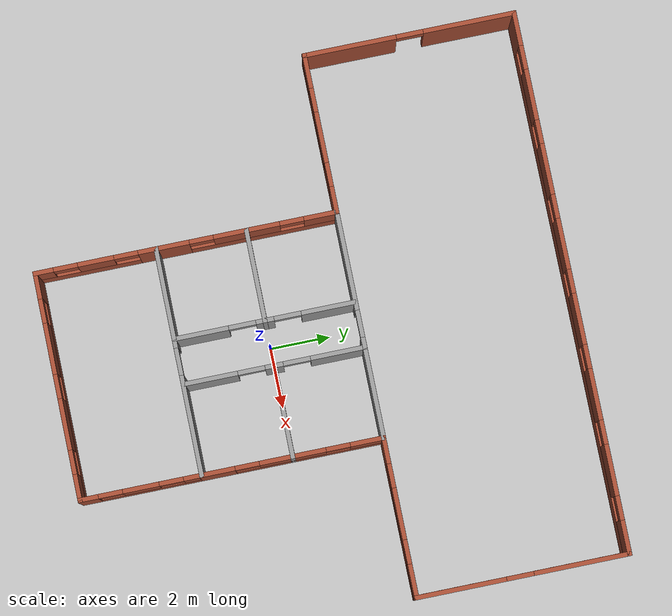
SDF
<?xml version='1.0'?>
<sdf version='1.6'>
  <model name='Building'>
    <pose frame=''>0 1.5 0 0 -0 0</pose>
    <link name='Wall_0'>
      <pose frame=''>0.75 -1.5 0 0 -0 1.5708</pose>
      <visual name='Wall_0_Visual_0'>
        <pose frame=''>-2.1375 0 1.25 0 -0 0</pose>
        <geometry>
          <box>
            <size>1.875 0.15 2.5</size>
          </box>
        </geometry>
        <material>
          <script>
            <uri>file://media/materials/scripts/gazebo.material</uri>
            <name>Gazebo/Grey</name>
          </script>
          <ambient>1 1 1 1</ambient>
        </material>
        <meta>
          <layer>0</layer>
        </meta>
      </visual>
      <collision name='Wall_0_Collision_0'>
        <geometry>
          <box>
            <size>1.875 0.15 2.5</size>
          </box>
        </geometry>
        <pose frame=''>-2.1375 0 1.25 0 -0 0</pose>
      </collision>
      <visual name='Wall_0_Visual_1'>
        <pose frame=''>0 0 1.25 0 -0 0</pose>
        <geometry>
          <box>
            <size>0.6 0.15 2.5</size>
          </box>
        </geometry>
        <material>
          <script>
            <uri>file://media/materials/scripts/gazebo.material</uri>
            <name>Gazebo/Grey</name>
          </script>
          <ambient>1 1 1 1</ambient>
        </material>
        <meta>
          <layer>0</layer>
        </meta>
      </visual>
      <collision name='Wall_0_Collision_1'>
        <geometry>
          <box>
            <size>0.6 0.15 2.5</size>
          </box>
        </geometry>
        <pose frame=''>0 0 1.25 0 -0 0</pose>
      </collision>
      <visual name='Wall_0_Visual_2'>
        <pose frame=''>2.1375 0 1.25 0 -0 0</pose>
        <geometry>
          <box>
            <size>1.875 0.15 2.5</size>
          </box>
        </geometry>
        <material>
          <script>
            <uri>file://media/materials/scripts/gazebo.material</uri>
            <name>Gazebo/Grey</name>
          </script>
          <ambient>1 1 1 1</ambient>
        </material>
        <meta>
          <layer>0</layer>
        </meta>
      </visual>
      <collision name='Wall_0_Collision_2'>
        <geometry>
          <box>
            <size>1.875 0.15 2.5</size>
          </box>
        </geometry>
        <pose frame=''>2.1375 0 1.25 0 -0 0</pose>
      </collision>
      <visual name='Wall_0_Visual_3'>
        <pose frame=''>-0.75 0 2.25 0 -0 0</pose>
        <geometry>
          <box>
            <size>0.9 0.15 0.5</size>
          </box>
        </geometry>
        <material>
          <script>
            <uri>file://media/materials/scripts/gazebo.material</uri>
            <name>Gazebo/Grey</name>
          </script>
          <ambient>1 1 1 1</ambient>
        </material>
        <meta>
          <layer>0</layer>
        </meta>
      </visual>
      <collision name='Wall_0_Collision_3'>
        <geometry>
          <box>
            <size>0.9 0.15 0.5</size>
          </box>
        </geometry>
        <pose frame=''>-0.75 0 2.25 0 -0 0</pose>
      </collision>
      <visual name='Wall_0_Visual_4'>
        <pose frame=''>0.75 0 2.25 0 -0 0</pose>
        <geometry>
          <box>
            <size>0.9 0.15 0.5</size>
          </box>
        </geometry>
        <material>
          <script>
            <uri>file://media/materials/scripts/gazebo.material</uri>
            <name>Gazebo/Grey</name>
          </script>
          <ambient>1 1 1 1</ambient>
        </material>
        <meta>
          <layer>0</layer>
        </meta>
      </visual>
      <collision name='Wall_0_Collision_4'>
        <geometry>
          <box>
            <size>0.9 0.15 0.5</size>
          </box>
        </geometry>
        <pose frame=''>0.75 0 2.25 0 -0 0</pose>
      </collision>
    </link>
    <link name='Wall_11'>
      <pose frame=''>-3.75 -1.5 0 0 -0 1.5708</pose>
      <visual name='Wall_11_Visual_0'>
        <pose frame=''>-2.4875 0 1.25 0 -0 0</pose>
        <geometry>
          <box>
            <size>1.175 0.15 2.5</size>
          </box>
        </geometry>
        <material>
          <script>
            <uri>file://media/materials/scripts/gazebo.material</uri>
            <name>Gazebo/Bricks</name>
          </script>
          <ambient>1 1 1 1</ambient>
        </material>
        <meta>
          <layer>0</layer>
        </meta>
      </visual>
      <collision name='Wall_11_Collision_0'>
        <geometry>
          <box>
            <size>1.175 0.15 2.5</size>
          </box>
        </geometry>
        <pose frame=''>-2.4875 0 1.25 0 -0 0</pose>
      </collision>
      <visual name='Wall_11_Visual_1'>
        <pose frame=''>0.5875 0 0.5 0 -0 0</pose>
        <geometry>
          <box>
            <size>4.975 0.15 1</size>
          </box>
        </geometry>
        <material>
          <script>
            <uri>file://media/materials/scripts/gazebo.material</uri>
            <name>Gazebo/Bricks</name>
          </script>
          <ambient>1 1 1 1</ambient>
        </material>
        <meta>
          <layer>0</layer>
        </meta>
      </visual>
      <collision name='Wall_11_Collision_1'>
        <geometry>
          <box>
            <size>4.975 0.15 1</size>
          </box>
        </geometry>
        <pose frame=''>0.5875 0 0.5 0 -0 0</pose>
      </collision>
      <visual name='Wall_11_Visual_2'>
        <pose frame=''>-0 0 1.75 0 -0 0</pose>
        <geometry>
          <box>
            <size>2.2 0.15 1.5</size>
          </box>
        </geometry>
        <material>
          <script>
            <uri>file://media/materials/scripts/gazebo.material</uri>
            <name>Gazebo/Bricks</name>
          </script>
          <ambient>1 1 1 1</ambient>
        </material>
        <meta>
          <layer>0</layer>
        </meta>
      </visual>
      <collision name='Wall_11_Collision_2'>
        <geometry>
          <box>
            <size>2.2 0.15 1.5</size>
          </box>
        </geometry>
        <pose frame=''>-0 0 1.75 0 -0 0</pose>
      </collision>
      <visual name='Wall_11_Visual_3'>
        <pose frame=''>2.4875 0 1.75 0 -0 0</pose>
        <geometry>
          <box>
            <size>1.175 0.15 1.5</size>
          </box>
        </geometry>
        <material>
          <script>
            <uri>file://media/materials/scripts/gazebo.material</uri>
            <name>Gazebo/Bricks</name>
          </script>
          <ambient>1 1 1 1</ambient>
        </material>
        <meta>
          <layer>0</layer>
        </meta>
      </visual>
      <collision name='Wall_11_Collision_3'>
        <geometry>
          <box>
            <size>1.175 0.15 1.5</size>
          </box>
        </geometry>
        <pose frame=''>2.4875 0 1.75 0 -0 0</pose>
      </collision>
      <visual name='Wall_11_Visual_4'>
        <pose frame=''>-1.5 0 2.15 0 -0 0</pose>
        <geometry>
          <box>
            <size>0.8 0.15 0.7</size>
          </box>
        </geometry>
        <material>
          <script>
            <uri>file://media/materials/scripts/gazebo.material</uri>
            <name>Gazebo/Bricks</name>
          </script>
          <ambient>1 1 1 1</ambient>
        </material>
        <meta>
          <layer>0</layer>
        </meta>
      </visual>
      <collision name='Wall_11_Collision_4'>
        <geometry>
          <box>
            <size>0.8 0.15 0.7</size>
          </box>
        </geometry>
        <pose frame=''>-1.5 0 2.15 0 -0 0</pose>
      </collision>
      <visual name='Wall_11_Visual_5'>
        <pose frame=''>1.5 0 2.15 0 -0 0</pose>
        <geometry>
          <box>
            <size>0.8 0.15 0.7</size>
          </box>
        </geometry>
        <material>
          <script>
            <uri>file://media/materials/scripts/gazebo.material</uri>
            <name>Gazebo/Bricks</name>
          </script>
          <ambient>1 1 1 1</ambient>
        </material>
        <meta>
          <layer>0</layer>
        </meta>
      </visual>
      <collision name='Wall_11_Collision_5'>
        <geometry>
          <box>
            <size>0.8 0.15 0.7</size>
          </box>
        </geometry>
        <pose frame=''>1.5 0 2.15 0 -0 0</pose>
      </collision>
    </link>
    <link name='Wall_13'>
      <pose frame=''>0 1.5 0 0 -0 0</pose>
      <visual name='Wall_13_Visual_0'>
        <pose frame=''>-2.15062 0 1.25 0 -0 0</pose>
        <geometry>
          <box>
            <size>3.34875 0.15 2.5</size>
          </box>
        </geometry>
        <material>
          <script>
            <uri>file://media/materials/scripts/gazebo.material</uri>
            <name>Gazebo/Grey</name>
          </script>
          <ambient>1 1 1 1</ambient>
        </material>
        <meta>
          <layer>0</layer>
        </meta>
      </visual>
      <collision name='Wall_13_Collision_0'>
        <geometry>
          <box>
            <size>3.34875 0.15 2.5</size>
          </box>
        </geometry>
        <pose frame=''>-2.15062 0 1.25 0 -0 0</pose>
      </collision>
      <visual name='Wall_13_Visual_1'>
        <pose frame=''>2.12438 0 1.25 0 -0 0</pose>
        <geometry>
          <box>
            <size>3.40125 0.15 2.5</size>
          </box>
        </geometry>
        <material>
          <script>
            <uri>file://media/materials/scripts/gazebo.material</uri>
            <name>Gazebo/Grey</name>
          </script>
          <ambient>1 1 1 1</ambient>
        </material>
        <meta>
          <layer>0</layer>
        </meta>
      </visual>
      <collision name='Wall_13_Collision_1'>
        <geometry>
          <box>
            <size>3.40125 0.15 2.5</size>
          </box>
        </geometry>
        <pose frame=''>2.12438 0 1.25 0 -0 0</pose>
      </collision>
      <visual name='Wall_13_Visual_2'>
        <pose frame=''>-0.026247 0 2.25 0 -0 0</pose>
        <geometry>
          <box>
            <size>0.9 0.15 0.5</size>
          </box>
        </geometry>
        <material>
          <script>
            <uri>file://media/materials/scripts/gazebo.material</uri>
            <name>Gazebo/Grey</name>
          </script>
          <ambient>1 1 1 1</ambient>
        </material>
        <meta>
          <layer>0</layer>
        </meta>
      </visual>
      <collision name='Wall_13_Collision_2'>
        <geometry>
          <box>
            <size>0.9 0.15 0.5</size>
          </box>
        </geometry>
        <pose frame=''>-0.026247 0 2.25 0 -0 0</pose>
      </collision>
    </link>
    <link name='Wall_15'>
      <pose frame=''>0 -4.5 0 0 -0 0</pose>
      <visual name='Wall_15_Visual_0'>
        <pose frame=''>-2.1375 0 1.25 0 -0 0</pose>
        <geometry>
          <box>
            <size>3.375 0.15 2.5</size>
          </box>
        </geometry>
        <material>
          <script>
            <uri>file://media/materials/scripts/gazebo.material</uri>
            <name>Gazebo/Grey</name>
          </script>
          <ambient>1 1 1 1</ambient>
        </material>
        <meta>
          <layer>0</layer>
        </meta>
      </visual>
      <collision name='Wall_15_Collision_0'>
        <geometry>
          <box>
            <size>3.375 0.15 2.5</size>
          </box>
        </geometry>
        <pose frame=''>-2.1375 0 1.25 0 -0 0</pose>
      </collision>
      <visual name='Wall_15_Visual_1'>
        <pose frame=''>2.1375 0 1.25 0 -0 0</pose>
        <geometry>
          <box>
            <size>3.375 0.15 2.5</size>
          </box>
        </geometry>
        <material>
          <script>
            <uri>file://media/materials/scripts/gazebo.material</uri>
            <name>Gazebo/Grey</name>
          </script>
          <ambient>1 1 1 1</ambient>
        </material>
        <meta>
          <layer>0</layer>
        </meta>
      </visual>
      <collision name='Wall_15_Collision_1'>
        <geometry>
          <box>
            <size>3.375 0.15 2.5</size>
          </box>
        </geometry>
        <pose frame=''>2.1375 0 1.25 0 -0 0</pose>
      </collision>
      <visual name='Wall_15_Visual_2'>
        <pose frame=''>0 0 2.25 0 -0 0</pose>
        <geometry>
          <box>
            <size>0.9 0.15 0.5</size>
          </box>
        </geometry>
        <material>
          <script>
            <uri>file://media/materials/scripts/gazebo.material</uri>
            <name>Gazebo/Grey</name>
          </script>
          <ambient>1 1 1 1</ambient>
        </material>
        <meta>
          <layer>0</layer>
        </meta>
      </visual>
      <collision name='Wall_15_Collision_2'>
        <geometry>
          <box>
            <size>0.9 0.15 0.5</size>
          </box>
        </geometry>
        <pose frame=''>0 0 2.25 0 -0 0</pose>
      </collision>
    </link>
    <link name='Wall_18'>
      <pose frame=''>-3.75 -6.5 0 0 0 -1.5708</pose>
      <visual name='Wall_18_Visual_0'>
        <pose frame=''>-1.73831 0 1.25 0 -0 0</pose>
        <geometry>
          <box>
            <size>0.673373 0.15 2.5</size>
          </box>
        </geometry>
        <material>
          <script>
            <uri>file://media/materials/scripts/gazebo.material</uri>
            <name>Gazebo/Bricks</name>
          </script>
          <ambient>1 1 1 1</ambient>
        </material>
        <meta>
          <layer>0</layer>
        </meta>
      </visual>
      <collision name='Wall_18_Collision_0'>
        <geometry>
          <box>
            <size>0.673373 0.15 2.5</size>
          </box>
        </geometry>
        <pose frame=''>-1.73831 0 1.25 0 -0 0</pose>
      </collision>
      <visual name='Wall_18_Visual_1'>
        <pose frame=''>0.336687 0 0.5 0 -0 0</pose>
        <geometry>
          <box>
            <size>3.47663 0.15 1</size>
          </box>
        </geometry>
        <material>
          <script>
            <uri>file://media/materials/scripts/gazebo.material</uri>
            <name>Gazebo/Bricks</name>
          </script>
          <ambient>1 1 1 1</ambient>
        </material>
        <meta>
          <layer>0</layer>
        </meta>
      </visual>
      <collision name='Wall_18_Collision_1'>
        <geometry>
          <box>
            <size>3.47663 0.15 1</size>
          </box>
        </geometry>
        <pose frame=''>0.336687 0 0.5 0 -0 0</pose>
      </collision>
      <visual name='Wall_18_Visual_2'>
        <pose frame=''>-0.000813 0 1.75 0 -0 0</pose>
        <geometry>
          <box>
            <size>1.20163 0.15 1.5</size>
          </box>
        </geometry>
        <material>
          <script>
            <uri>file://media/materials/scripts/gazebo.material</uri>
            <name>Gazebo/Bricks</name>
          </script>
          <ambient>1 1 1 1</ambient>
        </material>
        <meta>
          <layer>0</layer>
        </meta>
      </visual>
      <collision name='Wall_18_Collision_2'>
        <geometry>
          <box>
            <size>1.20163 0.15 1.5</size>
          </box>
        </geometry>
        <pose frame=''>-0.000813 0 1.75 0 -0 0</pose>
      </collision>
      <visual name='Wall_18_Visual_3'>
        <pose frame=''>1.7375 0 1.75 0 -0 0</pose>
        <geometry>
          <box>
            <size>0.675 0.15 1.5</size>
          </box>
        </geometry>
        <material>
          <script>
            <uri>file://media/materials/scripts/gazebo.material</uri>
            <name>Gazebo/Bricks</name>
          </script>
          <ambient>1 1 1 1</ambient>
        </material>
        <meta>
          <layer>0</layer>
        </meta>
      </visual>
      <collision name='Wall_18_Collision_3'>
        <geometry>
          <box>
            <size>0.675 0.15 1.5</size>
          </box>
        </geometry>
        <pose frame=''>1.7375 0 1.75 0 -0 0</pose>
      </collision>
      <visual name='Wall_18_Visual_4'>
        <pose frame=''>-1.00163 0 2.15 0 -0 0</pose>
        <geometry>
          <box>
            <size>0.8 0.15 0.7</size>
          </box>
        </geometry>
        <material>
          <script>
            <uri>file://media/materials/scripts/gazebo.material</uri>
            <name>Gazebo/Bricks</name>
          </script>
          <ambient>1 1 1 1</ambient>
        </material>
        <meta>
          <layer>0</layer>
        </meta>
      </visual>
      <collision name='Wall_18_Collision_4'>
        <geometry>
          <box>
            <size>0.8 0.15 0.7</size>
          </box>
        </geometry>
        <pose frame=''>-1.00163 0 2.15 0 -0 0</pose>
      </collision>
      <visual name='Wall_18_Visual_5'>
        <pose frame=''>1 0 2.15 0 -0 0</pose>
        <geometry>
          <box>
            <size>0.8 0.15 0.7</size>
          </box>
        </geometry>
        <material>
          <script>
            <uri>file://media/materials/scripts/gazebo.material</uri>
            <name>Gazebo/Bricks</name>
          </script>
          <ambient>1 1 1 1</ambient>
        </material>
        <meta>
          <layer>0</layer>
        </meta>
      </visual>
      <collision name='Wall_18_Collision_5'>
        <geometry>
          <box>
            <size>0.8 0.15 0.7</size>
          </box>
        </geometry>
        <pose frame=''>1 0 2.15 0 -0 0</pose>
      </collision>
    </link>
    <link name='Wall_19'>
      <pose frame=''>0 -8.5 0 0 -0 0</pose>
      <visual name='Wall_19_Visual_0'>
        <pose frame=''>-3.36188 0 1.25 0 -0 0</pose>
        <geometry>
          <box>
            <size>0.926239 0.15 2.5</size>
          </box>
        </geometry>
        <material>
          <script>
            <uri>file://media/materials/scripts/gazebo.material</uri>
            <name>Gazebo/Bricks</name>
          </script>
          <ambient>1 1 1 1</ambient>
        </material>
        <meta>
          <layer>0</layer>
        </meta>
      </visual>
      <collision name='Wall_19_Collision_0'>
        <geometry>
          <box>
            <size>0.926239 0.15 2.5</size>
          </box>
        </geometry>
        <pose frame=''>-3.36188 0 1.25 0 -0 0</pose>
      </collision>
      <visual name='Wall_19_Visual_1'>
        <pose frame=''>0.463119 0 0.5 0 -0 0</pose>
        <geometry>
          <box>
            <size>6.72376 0.15 1</size>
          </box>
        </geometry>
        <material>
          <script>
            <uri>file://media/materials/scripts/gazebo.material</uri>
            <name>Gazebo/Bricks</name>
          </script>
          <ambient>1 1 1 1</ambient>
        </material>
        <meta>
          <layer>0</layer>
        </meta>
      </visual>
      <collision name='Wall_19_Collision_1'>
        <geometry>
          <box>
            <size>6.72376 0.15 1</size>
          </box>
        </geometry>
        <pose frame=''>0.463119 0 0.5 0 -0 0</pose>
      </collision>
      <visual name='Wall_19_Visual_2'>
        <pose frame=''>-1.24938 0 1.75 0 -0 0</pose>
        <geometry>
          <box>
            <size>1.69876 0.15 1.5</size>
          </box>
        </geometry>
        <material>
          <script>
            <uri>file://media/materials/scripts/gazebo.material</uri>
            <name>Gazebo/Bricks</name>
          </script>
          <ambient>1 1 1 1</ambient>
        </material>
        <meta>
          <layer>0</layer>
        </meta>
      </visual>
      <collision name='Wall_19_Collision_2'>
        <geometry>
          <box>
            <size>1.69876 0.15 1.5</size>
          </box>
        </geometry>
        <pose frame=''>-1.24938 0 1.75 0 -0 0</pose>
      </collision>
      <visual name='Wall_19_Visual_3'>
        <pose frame=''>1.25 0 1.75 0 -0 0</pose>
        <geometry>
          <box>
            <size>1.7 0.15 1.5</size>
          </box>
        </geometry>
        <material>
          <script>
            <uri>file://media/materials/scripts/gazebo.material</uri>
            <name>Gazebo/Bricks</name>
          </script>
          <ambient>1 1 1 1</ambient>
        </material>
        <meta>
          <layer>0</layer>
        </meta>
      </visual>
      <collision name='Wall_19_Collision_3'>
        <geometry>
          <box>
            <size>1.7 0.15 1.5</size>
          </box>
        </geometry>
        <pose frame=''>1.25 0 1.75 0 -0 0</pose>
      </collision>
      <visual name='Wall_19_Visual_4'>
        <pose frame=''>3.3625 0 1.75 0 -0 0</pose>
        <geometry>
          <box>
            <size>0.925 0.15 1.5</size>
          </box>
        </geometry>
        <material>
          <script>
            <uri>file://media/materials/scripts/gazebo.material</uri>
            <name>Gazebo/Bricks</name>
          </script>
          <ambient>1 1 1 1</ambient>
        </material>
        <meta>
          <layer>0</layer>
        </meta>
      </visual>
      <collision name='Wall_19_Collision_4'>
        <geometry>
          <box>
            <size>0.925 0.15 1.5</size>
          </box>
        </geometry>
        <pose frame=''>3.3625 0 1.75 0 -0 0</pose>
      </collision>
      <visual name='Wall_19_Visual_5'>
        <pose frame=''>-2.49876 0 2.15 0 -0 0</pose>
        <geometry>
          <box>
            <size>0.8 0.15 0.7</size>
          </box>
        </geometry>
        <material>
          <script>
            <uri>file://media/materials/scripts/gazebo.material</uri>
            <name>Gazebo/Bricks</name>
          </script>
          <ambient>1 1 1 1</ambient>
        </material>
        <meta>
          <layer>0</layer>
        </meta>
      </visual>
      <collision name='Wall_19_Collision_5'>
        <geometry>
          <box>
            <size>0.8 0.15 0.7</size>
          </box>
        </geometry>
        <pose frame=''>-2.49876 0 2.15 0 -0 0</pose>
      </collision>
      <visual name='Wall_19_Visual_6'>
        <pose frame=''>0 0 2.15 0 -0 0</pose>
        <geometry>
          <box>
            <size>0.8 0.15 0.7</size>
          </box>
        </geometry>
        <material>
          <script>
            <uri>file://media/materials/scripts/gazebo.material</uri>
            <name>Gazebo/Bricks</name>
          </script>
          <ambient>1 1 1 1</ambient>
        </material>
        <meta>
          <layer>0</layer>
        </meta>
      </visual>
      <collision name='Wall_19_Collision_6'>
        <geometry>
          <box>
            <size>0.8 0.15 0.7</size>
          </box>
        </geometry>
        <pose frame=''>0 0 2.15 0 -0 0</pose>
      </collision>
      <visual name='Wall_19_Visual_7'>
        <pose frame=''>2.5 0 2.15 0 -0 0</pose>
        <geometry>
          <box>
            <size>0.8 0.15 0.7</size>
          </box>
        </geometry>
        <material>
          <script>
            <uri>file://media/materials/scripts/gazebo.material</uri>
            <name>Gazebo/Bricks</name>
          </script>
          <ambient>1 1 1 1</ambient>
        </material>
        <meta>
          <layer>0</layer>
        </meta>
      </visual>
      <collision name='Wall_19_Collision_7'>
        <geometry>
          <box>
            <size>0.8 0.15 0.7</size>
          </box>
        </geometry>
        <pose frame=''>2.5 0 2.15 0 -0 0</pose>
      </collision>
    </link>
    <link name='Wall_2'>
      <pose frame=''>-0.75 -1.5 0 0 -0 1.5708</pose>
      <visual name='Wall_2_Visual_0'>
        <pose frame=''>-2.1375 0 1.25 0 -0 0</pose>
        <geometry>
          <box>
            <size>1.875 0.15 2.5</size>
          </box>
        </geometry>
        <material>
          <script>
            <uri>file://media/materials/scripts/gazebo.material</uri>
            <name>Gazebo/Grey</name>
          </script>
          <ambient>1 1 1 1</ambient>
        </material>
        <meta>
          <layer>0</layer>
        </meta>
      </visual>
      <collision name='Wall_2_Collision_0'>
        <geometry>
          <box>
            <size>1.875 0.15 2.5</size>
          </box>
        </geometry>
        <pose frame=''>-2.1375 0 1.25 0 -0 0</pose>
      </collision>
      <visual name='Wall_2_Visual_1'>
        <pose frame=''>0 0 1.25 0 -0 0</pose>
        <geometry>
          <box>
            <size>0.6 0.15 2.5</size>
          </box>
        </geometry>
        <material>
          <script>
            <uri>file://media/materials/scripts/gazebo.material</uri>
            <name>Gazebo/Grey</name>
          </script>
          <ambient>1 1 1 1</ambient>
        </material>
        <meta>
          <layer>0</layer>
        </meta>
      </visual>
      <collision name='Wall_2_Collision_1'>
        <geometry>
          <box>
            <size>0.6 0.15 2.5</size>
          </box>
        </geometry>
        <pose frame=''>0 0 1.25 0 -0 0</pose>
      </collision>
      <visual name='Wall_2_Visual_2'>
        <pose frame=''>2.1375 0 1.25 0 -0 0</pose>
        <geometry>
          <box>
            <size>1.875 0.15 2.5</size>
          </box>
        </geometry>
        <material>
          <script>
            <uri>file://media/materials/scripts/gazebo.material</uri>
            <name>Gazebo/Grey</name>
          </script>
          <ambient>1 1 1 1</ambient>
        </material>
        <meta>
          <layer>0</layer>
        </meta>
      </visual>
      <collision name='Wall_2_Collision_2'>
        <geometry>
          <box>
            <size>1.875 0.15 2.5</size>
          </box>
        </geometry>
        <pose frame=''>2.1375 0 1.25 0 -0 0</pose>
      </collision>
      <visual name='Wall_2_Visual_3'>
        <pose frame=''>-0.75 0 2.25 0 -0 0</pose>
        <geometry>
          <box>
            <size>0.9 0.15 0.5</size>
          </box>
        </geometry>
        <material>
          <script>
            <uri>file://media/materials/scripts/gazebo.material</uri>
            <name>Gazebo/Grey</name>
          </script>
          <ambient>1 1 1 1</ambient>
        </material>
        <meta>
          <layer>0</layer>
        </meta>
      </visual>
      <collision name='Wall_2_Collision_3'>
        <geometry>
          <box>
            <size>0.9 0.15 0.5</size>
          </box>
        </geometry>
        <pose frame=''>-0.75 0 2.25 0 -0 0</pose>
      </collision>
      <visual name='Wall_2_Visual_4'>
        <pose frame=''>0.75 0 2.25 0 -0 0</pose>
        <geometry>
          <box>
            <size>0.9 0.15 0.5</size>
          </box>
        </geometry>
        <material>
          <script>
            <uri>file://media/materials/scripts/gazebo.material</uri>
            <name>Gazebo/Grey</name>
          </script>
          <ambient>1 1 1 1</ambient>
        </material>
        <meta>
          <layer>0</layer>
        </meta>
      </visual>
      <collision name='Wall_2_Collision_4'>
        <geometry>
          <box>
            <size>0.9 0.15 0.5</size>
          </box>
        </geometry>
        <pose frame=''>0.75 0 2.25 0 -0 0</pose>
      </collision>
    </link>
    <link name='Wall_20'>
      <pose frame=''>3.75 -6.5 0 0 -0 1.5708</pose>
      <visual name='Wall_20_Visual_0'>
        <pose frame=''>-1.7375 0 1.25 0 -0 0</pose>
        <geometry>
          <box>
            <size>0.675 0.15 2.5</size>
          </box>
        </geometry>
        <material>
          <script>
            <uri>file://media/materials/scripts/gazebo.material</uri>
            <name>Gazebo/Bricks</name>
          </script>
          <ambient>1 1 1 1</ambient>
        </material>
        <meta>
          <layer>0</layer>
        </meta>
      </visual>
      <collision name='Wall_20_Collision_0'>
        <geometry>
          <box>
            <size>0.675 0.15 2.5</size>
          </box>
        </geometry>
        <pose frame=''>-1.7375 0 1.25 0 -0 0</pose>
      </collision>
      <visual name='Wall_20_Visual_1'>
        <pose frame=''>0.3375 0 0.5 0 -0 0</pose>
        <geometry>
          <box>
            <size>3.475 0.15 1</size>
          </box>
        </geometry>
        <material>
          <script>
            <uri>file://media/materials/scripts/gazebo.material</uri>
            <name>Gazebo/Bricks</name>
          </script>
          <ambient>1 1 1 1</ambient>
        </material>
        <meta>
          <layer>0</layer>
        </meta>
      </visual>
      <collision name='Wall_20_Collision_1'>
        <geometry>
          <box>
            <size>3.475 0.15 1</size>
          </box>
        </geometry>
        <pose frame=''>0.3375 0 0.5 0 -0 0</pose>
      </collision>
      <visual name='Wall_20_Visual_2'>
        <pose frame=''>0 0 1.75 0 -0 0</pose>
        <geometry>
          <box>
            <size>1.2 0.15 1.5</size>
          </box>
        </geometry>
        <material>
          <script>
            <uri>file://media/materials/scripts/gazebo.material</uri>
            <name>Gazebo/Bricks</name>
          </script>
          <ambient>1 1 1 1</ambient>
        </material>
        <meta>
          <layer>0</layer>
        </meta>
      </visual>
      <collision name='Wall_20_Collision_2'>
        <geometry>
          <box>
            <size>1.2 0.15 1.5</size>
          </box>
        </geometry>
        <pose frame=''>0 0 1.75 0 -0 0</pose>
      </collision>
      <visual name='Wall_20_Visual_3'>
        <pose frame=''>1.7375 0 1.75 0 -0 0</pose>
        <geometry>
          <box>
            <size>0.675 0.15 1.5</size>
          </box>
        </geometry>
        <material>
          <script>
            <uri>file://media/materials/scripts/gazebo.material</uri>
            <name>Gazebo/Bricks</name>
          </script>
          <ambient>1 1 1 1</ambient>
        </material>
        <meta>
          <layer>0</layer>
        </meta>
      </visual>
      <collision name='Wall_20_Collision_3'>
        <geometry>
          <box>
            <size>0.675 0.15 1.5</size>
          </box>
        </geometry>
        <pose frame=''>1.7375 0 1.75 0 -0 0</pose>
      </collision>
      <visual name='Wall_20_Visual_4'>
        <pose frame=''>-1 0 2.15 0 -0 0</pose>
        <geometry>
          <box>
            <size>0.8 0.15 0.7</size>
          </box>
        </geometry>
        <material>
          <script>
            <uri>file://media/materials/scripts/gazebo.material</uri>
            <name>Gazebo/Bricks</name>
          </script>
          <ambient>1 1 1 1</ambient>
        </material>
        <meta>
          <layer>0</layer>
        </meta>
      </visual>
      <collision name='Wall_20_Collision_4'>
        <geometry>
          <box>
            <size>0.8 0.15 0.7</size>
          </box>
        </geometry>
        <pose frame=''>-1 0 2.15 0 -0 0</pose>
      </collision>
      <visual name='Wall_20_Visual_5'>
        <pose frame=''>1 0 2.15 0 -0 0</pose>
        <geometry>
          <box>
            <size>0.8 0.15 0.7</size>
          </box>
        </geometry>
        <material>
          <script>
            <uri>file://media/materials/scripts/gazebo.material</uri>
            <name>Gazebo/Bricks</name>
          </script>
          <ambient>1 1 1 1</ambient>
        </material>
        <meta>
          <layer>0</layer>
        </meta>
      </visual>
      <collision name='Wall_20_Collision_5'>
        <geometry>
          <box>
            <size>0.8 0.15 0.7</size>
          </box>
        </geometry>
        <pose frame=''>1 0 2.15 0 -0 0</pose>
      </collision>
    </link>
    <link name='Wall_22'>
      <pose frame=''>-6.375 1.5 0 0 -0 3.14159</pose>
      <visual name='Wall_22_Visual_0'>
        <pose frame=''>-2.2375 0 1.25 0 -0 0</pose>
        <geometry>
          <box>
            <size>0.925 0.15 2.5</size>
          </box>
        </geometry>
        <material>
          <script>
            <uri>file://media/materials/scripts/gazebo.material</uri>
            <name>Gazebo/Bricks</name>
          </script>
          <ambient>1 1 1 1</ambient>
        </material>
        <meta>
          <layer>0</layer>
        </meta>
      </visual>
      <collision name='Wall_22_Collision_0'>
        <geometry>
          <box>
            <size>0.925 0.15 2.5</size>
          </box>
        </geometry>
        <pose frame=''>-2.2375 0 1.25 0 -0 0</pose>
      </collision>
      <visual name='Wall_22_Visual_1'>
        <pose frame=''>0.4625 0 0.5 0 -0 0</pose>
        <geometry>
          <box>
            <size>4.475 0.15 1</size>
          </box>
        </geometry>
        <material>
          <script>
            <uri>file://media/materials/scripts/gazebo.material</uri>
            <name>Gazebo/Bricks</name>
          </script>
          <ambient>1 1 1 1</ambient>
        </material>
        <meta>
          <layer>0</layer>
        </meta>
      </visual>
      <collision name='Wall_22_Collision_1'>
        <geometry>
          <box>
            <size>4.475 0.15 1</size>
          </box>
        </geometry>
        <pose frame=''>0.4625 0 0.5 0 -0 0</pose>
      </collision>
      <visual name='Wall_22_Visual_2'>
        <pose frame=''>-0.125 0 1.75 0 -0 0</pose>
        <geometry>
          <box>
            <size>1.7 0.15 1.5</size>
          </box>
        </geometry>
        <material>
          <script>
            <uri>file://media/materials/scripts/gazebo.material</uri>
            <name>Gazebo/Bricks</name>
          </script>
          <ambient>1 1 1 1</ambient>
        </material>
        <meta>
          <layer>0</layer>
        </meta>
      </visual>
      <collision name='Wall_22_Collision_2'>
        <geometry>
          <box>
            <size>1.7 0.15 1.5</size>
          </box>
        </geometry>
        <pose frame=''>-0.125 0 1.75 0 -0 0</pose>
      </collision>
      <visual name='Wall_22_Visual_3'>
        <pose frame=''>2.1125 0 1.75 0 -0 0</pose>
        <geometry>
          <box>
            <size>1.175 0.15 1.5</size>
          </box>
        </geometry>
        <material>
          <script>
            <uri>file://media/materials/scripts/gazebo.material</uri>
            <name>Gazebo/Bricks</name>
          </script>
          <ambient>1 1 1 1</ambient>
        </material>
        <meta>
          <layer>0</layer>
        </meta>
      </visual>
      <collision name='Wall_22_Collision_3'>
        <geometry>
          <box>
            <size>1.175 0.15 1.5</size>
          </box>
        </geometry>
        <pose frame=''>2.1125 0 1.75 0 -0 0</pose>
      </collision>
      <visual name='Wall_22_Visual_4'>
        <pose frame=''>-1.375 0 2.15 0 -0 0</pose>
        <geometry>
          <box>
            <size>0.8 0.15 0.7</size>
          </box>
        </geometry>
        <material>
          <script>
            <uri>file://media/materials/scripts/gazebo.material</uri>
            <name>Gazebo/Bricks</name>
          </script>
          <ambient>1 1 1 1</ambient>
        </material>
        <meta>
          <layer>0</layer>
        </meta>
      </visual>
      <collision name='Wall_22_Collision_4'>
        <geometry>
          <box>
            <size>0.8 0.15 0.7</size>
          </box>
        </geometry>
        <pose frame=''>-1.375 0 2.15 0 -0 0</pose>
      </collision>
      <visual name='Wall_22_Visual_5'>
        <pose frame=''>1.125 0 2.15 0 -0 0</pose>
        <geometry>
          <box>
            <size>0.8 0.15 0.7</size>
          </box>
        </geometry>
        <material>
          <script>
            <uri>file://media/materials/scripts/gazebo.material</uri>
            <name>Gazebo/Bricks</name>
          </script>
          <ambient>1 1 1 1</ambient>
        </material>
        <meta>
          <layer>0</layer>
        </meta>
      </visual>
      <collision name='Wall_22_Collision_5'>
        <geometry>
          <box>
            <size>0.8 0.15 0.7</size>
          </box>
        </geometry>
        <pose frame=''>1.125 0 2.15 0 -0 0</pose>
      </collision>
    </link>
    <link name='Wall_24'>
      <pose frame=''>6.375 1.5 0 0 -0 0</pose>
      <visual name='Wall_24_Visual_0'>
        <pose frame=''>-2.2375 0 1.25 0 -0 0</pose>
        <geometry>
          <box>
            <size>0.925 0.15 2.5</size>
          </box>
        </geometry>
        <material>
          <script>
            <uri>file://media/materials/scripts/gazebo.material</uri>
            <name>Gazebo/Bricks</name>
          </script>
          <ambient>1 1 1 1</ambient>
        </material>
        <meta>
          <layer>0</layer>
        </meta>
      </visual>
      <collision name='Wall_24_Collision_0'>
        <geometry>
          <box>
            <size>0.925 0.15 2.5</size>
          </box>
        </geometry>
        <pose frame=''>-2.2375 0 1.25 0 -0 0</pose>
      </collision>
      <visual name='Wall_24_Visual_1'>
        <pose frame=''>0.4625 0 0.5 0 -0 0</pose>
        <geometry>
          <box>
            <size>4.475 0.15 1</size>
          </box>
        </geometry>
        <material>
          <script>
            <uri>file://media/materials/scripts/gazebo.material</uri>
            <name>Gazebo/Bricks</name>
          </script>
          <ambient>1 1 1 1</ambient>
        </material>
        <meta>
          <layer>0</layer>
        </meta>
      </visual>
      <collision name='Wall_24_Collision_1'>
        <geometry>
          <box>
            <size>4.475 0.15 1</size>
          </box>
        </geometry>
        <pose frame=''>0.4625 0 0.5 0 -0 0</pose>
      </collision>
      <visual name='Wall_24_Visual_2'>
        <pose frame=''>-0.125 0 1.75 0 -0 0</pose>
        <geometry>
          <box>
            <size>1.7 0.15 1.5</size>
          </box>
        </geometry>
        <material>
          <script>
            <uri>file://media/materials/scripts/gazebo.material</uri>
            <name>Gazebo/Bricks</name>
          </script>
          <ambient>1 1 1 1</ambient>
        </material>
        <meta>
          <layer>0</layer>
        </meta>
      </visual>
      <collision name='Wall_24_Collision_2'>
        <geometry>
          <box>
            <size>1.7 0.15 1.5</size>
          </box>
        </geometry>
        <pose frame=''>-0.125 0 1.75 0 -0 0</pose>
      </collision>
      <visual name='Wall_24_Visual_3'>
        <pose frame=''>2.1125 0 1.75 0 -0 0</pose>
        <geometry>
          <box>
            <size>1.175 0.15 1.5</size>
          </box>
        </geometry>
        <material>
          <script>
            <uri>file://media/materials/scripts/gazebo.material</uri>
            <name>Gazebo/Bricks</name>
          </script>
          <ambient>1 1 1 1</ambient>
        </material>
        <meta>
          <layer>0</layer>
        </meta>
      </visual>
      <collision name='Wall_24_Collision_3'>
        <geometry>
          <box>
            <size>1.175 0.15 1.5</size>
          </box>
        </geometry>
        <pose frame=''>2.1125 0 1.75 0 -0 0</pose>
      </collision>
      <visual name='Wall_24_Visual_4'>
        <pose frame=''>-1.375 0 2.15 0 -0 0</pose>
        <geometry>
          <box>
            <size>0.8 0.15 0.7</size>
          </box>
        </geometry>
        <material>
          <script>
            <uri>file://media/materials/scripts/gazebo.material</uri>
            <name>Gazebo/Bricks</name>
          </script>
          <ambient>1 1 1 1</ambient>
        </material>
        <meta>
          <layer>0</layer>
        </meta>
      </visual>
      <collision name='Wall_24_Collision_4'>
        <geometry>
          <box>
            <size>0.8 0.15 0.7</size>
          </box>
        </geometry>
        <pose frame=''>-1.375 0 2.15 0 -0 0</pose>
      </collision>
      <visual name='Wall_24_Visual_5'>
        <pose frame=''>1.125 0 2.15 0 -0 0</pose>
        <geometry>
          <box>
            <size>0.8 0.15 0.7</size>
          </box>
        </geometry>
        <material>
          <script>
            <uri>file://media/materials/scripts/gazebo.material</uri>
            <name>Gazebo/Bricks</name>
          </script>
          <ambient>1 1 1 1</ambient>
        </material>
        <meta>
          <layer>0</layer>
        </meta>
      </visual>
      <collision name='Wall_24_Collision_5'>
        <geometry>
          <box>
            <size>0.8 0.15 0.7</size>
          </box>
        </geometry>
        <pose frame=''>1.125 0 2.15 0 -0 0</pose>
      </collision>
    </link>
    <link name='Wall_26'>
      <pose frame=''>-9 5 0 0 -0 1.5708</pose>
      <visual name='Wall_26_Visual_0'>
        <pose frame=''>-2.00716 0 1.25 0 -0 0</pose>
        <geometry>
          <box>
            <size>3.13568 0.15 2.5</size>
          </box>
        </geometry>
        <material>
          <script>
            <uri>file://media/materials/scripts/gazebo.material</uri>
            <name>Gazebo/Bricks</name>
          </script>
          <ambient>1 1 1 1</ambient>
        </material>
        <meta>
          <layer>0</layer>
        </meta>
      </visual>
      <collision name='Wall_26_Collision_0'>
        <geometry>
          <box>
            <size>3.13568 0.15 2.5</size>
          </box>
        </geometry>
        <pose frame=''>-2.00716 0 1.25 0 -0 0</pose>
      </collision>
      <visual name='Wall_26_Visual_1'>
        <pose frame=''>2.01784 0 1.25 0 -0 0</pose>
        <geometry>
          <box>
            <size>3.11432 0.15 2.5</size>
          </box>
        </geometry>
        <material>
          <script>
            <uri>file://media/materials/scripts/gazebo.material</uri>
            <name>Gazebo/Bricks</name>
          </script>
          <ambient>1 1 1 1</ambient>
        </material>
        <meta>
          <layer>0</layer>
        </meta>
      </visual>
      <collision name='Wall_26_Collision_1'>
        <geometry>
          <box>
            <size>3.11432 0.15 2.5</size>
          </box>
        </geometry>
        <pose frame=''>2.01784 0 1.25 0 -0 0</pose>
      </collision>
      <visual name='Wall_26_Visual_2'>
        <pose frame=''>0.010678 0 2.25 0 -0 0</pose>
        <geometry>
          <box>
            <size>0.9 0.15 0.5</size>
          </box>
        </geometry>
        <material>
          <script>
            <uri>file://media/materials/scripts/gazebo.material</uri>
            <name>Gazebo/Bricks</name>
          </script>
          <ambient>1 1 1 1</ambient>
        </material>
        <meta>
          <layer>0</layer>
        </meta>
      </visual>
      <collision name='Wall_26_Collision_2'>
        <geometry>
          <box>
            <size>0.9 0.15 0.5</size>
          </box>
        </geometry>
        <pose frame=''>0.010678 0 2.25 0 -0 0</pose>
      </collision>
    </link>
    <link name='Wall_28'>
      <pose frame=''>9 5 0 0 -0 1.5708</pose>
      <visual name='Wall_28_Visual_0'>
        <pose frame=''>-2.06083 0 1.25 0 -0 0</pose>
        <geometry>
          <box>
            <size>3.02833 0.15 2.5</size>
          </box>
        </geometry>
        <material>
          <script>
            <uri>file://media/materials/scripts/gazebo.material</uri>
            <name>Gazebo/Bricks</name>
          </script>
          <ambient>1 1 1 1</ambient>
        </material>
        <meta>
          <layer>0</layer>
        </meta>
      </visual>
      <collision name='Wall_28_Collision_0'>
        <geometry>
          <box>
            <size>3.02833 0.15 2.5</size>
          </box>
        </geometry>
        <pose frame=''>-2.06083 0 1.25 0 -0 0</pose>
      </collision>
      <visual name='Wall_28_Visual_1'>
        <pose frame=''>1.96417 0 1.25 0 -0 0</pose>
        <geometry>
          <box>
            <size>3.22167 0.15 2.5</size>
          </box>
        </geometry>
        <material>
          <script>
            <uri>file://media/materials/scripts/gazebo.material</uri>
            <name>Gazebo/Bricks</name>
          </script>
          <ambient>1 1 1 1</ambient>
        </material>
        <meta>
          <layer>0</layer>
        </meta>
      </visual>
      <collision name='Wall_28_Collision_1'>
        <geometry>
          <box>
            <size>3.22167 0.15 2.5</size>
          </box>
        </geometry>
        <pose frame=''>1.96417 0 1.25 0 -0 0</pose>
      </collision>
      <visual name='Wall_28_Visual_2'>
        <pose frame=''>-0.096666 0 2.25 0 -0 0</pose>
        <geometry>
          <box>
            <size>0.9 0.15 0.5</size>
          </box>
        </geometry>
        <material>
          <script>
            <uri>file://media/materials/scripts/gazebo.material</uri>
            <name>Gazebo/Bricks</name>
          </script>
          <ambient>1 1 1 1</ambient>
        </material>
        <meta>
          <layer>0</layer>
        </meta>
      </visual>
      <collision name='Wall_28_Collision_2'>
        <geometry>
          <box>
            <size>0.9 0.15 0.5</size>
          </box>
        </geometry>
        <pose frame=''>-0.096666 0 2.25 0 -0 0</pose>
      </collision>
    </link>
    <link name='Wall_30'>
      <pose frame=''>0 8.5 0 0 -0 0</pose>
      <visual name='Wall_30_Visual_0'>
        <pose frame=''>-8.4875 0 1.25 0 -0 0</pose>
        <geometry>
          <box>
            <size>1.175 0.15 2.5</size>
          </box>
        </geometry>
        <material>
          <script>
            <uri>file://media/materials/scripts/gazebo.material</uri>
            <name>Gazebo/Bricks</name>
          </script>
          <ambient>1 1 1 1</ambient>
        </material>
        <meta>
          <layer>0</layer>
        </meta>
      </visual>
      <collision name='Wall_30_Collision_0'>
        <geometry>
          <box>
            <size>1.175 0.15 2.5</size>
          </box>
        </geometry>
        <pose frame=''>-8.4875 0 1.25 0 -0 0</pose>
      </collision>
      <visual name='Wall_30_Visual_1'>
        <pose frame=''>0.5875 0 0.5 0 -0 0</pose>
        <geometry>
          <box>
            <size>16.975 0.15 1</size>
          </box>
        </geometry>
        <material>
          <script>
            <uri>file://media/materials/scripts/gazebo.material</uri>
            <name>Gazebo/Bricks</name>
          </script>
          <ambient>1 1 1 1</ambient>
        </material>
        <meta>
          <layer>0</layer>
        </meta>
      </visual>
      <collision name='Wall_30_Collision_1'>
        <geometry>
          <box>
            <size>16.975 0.15 1</size>
          </box>
        </geometry>
        <pose frame=''>0.5875 0 0.5 0 -0 0</pose>
      </collision>
      <visual name='Wall_30_Visual_2'>
        <pose frame=''>-6.25 0 1.75 0 -0 0</pose>
        <geometry>
          <box>
            <size>1.7 0.15 1.5</size>
          </box>
        </geometry>
        <material>
          <script>
            <uri>file://media/materials/scripts/gazebo.material</uri>
            <name>Gazebo/Bricks</name>
          </script>
          <ambient>1 1 1 1</ambient>
        </material>
        <meta>
          <layer>0</layer>
        </meta>
      </visual>
      <collision name='Wall_30_Collision_2'>
        <geometry>
          <box>
            <size>1.7 0.15 1.5</size>
          </box>
        </geometry>
        <pose frame=''>-6.25 0 1.75 0 -0 0</pose>
      </collision>
      <visual name='Wall_30_Visual_3'>
        <pose frame=''>-3.75 0 1.75 0 -0 0</pose>
        <geometry>
          <box>
            <size>1.7 0.15 1.5</size>
          </box>
        </geometry>
        <material>
          <script>
            <uri>file://media/materials/scripts/gazebo.material</uri>
            <name>Gazebo/Bricks</name>
          </script>
          <ambient>1 1 1 1</ambient>
        </material>
        <meta>
          <layer>0</layer>
        </meta>
      </visual>
      <collision name='Wall_30_Collision_3'>
        <geometry>
          <box>
            <size>1.7 0.15 1.5</size>
          </box>
        </geometry>
        <pose frame=''>-3.75 0 1.75 0 -0 0</pose>
      </collision>
      <visual name='Wall_30_Visual_4'>
        <pose frame=''>-1.25 0 1.75 0 -0 0</pose>
        <geometry>
          <box>
            <size>1.7 0.15 1.5</size>
          </box>
        </geometry>
        <material>
          <script>
            <uri>file://media/materials/scripts/gazebo.material</uri>
            <name>Gazebo/Bricks</name>
          </script>
          <ambient>1 1 1 1</ambient>
        </material>
        <meta>
          <layer>0</layer>
        </meta>
      </visual>
      <collision name='Wall_30_Collision_4'>
        <geometry>
          <box>
            <size>1.7 0.15 1.5</size>
          </box>
        </geometry>
        <pose frame=''>-1.25 0 1.75 0 -0 0</pose>
      </collision>
      <visual name='Wall_30_Visual_5'>
        <pose frame=''>1.25 0 1.75 0 -0 0</pose>
        <geometry>
          <box>
            <size>1.7 0.15 1.5</size>
          </box>
        </geometry>
        <material>
          <script>
            <uri>file://media/materials/scripts/gazebo.material</uri>
            <name>Gazebo/Bricks</name>
          </script>
          <ambient>1 1 1 1</ambient>
        </material>
        <meta>
          <layer>0</layer>
        </meta>
      </visual>
      <collision name='Wall_30_Collision_5'>
        <geometry>
          <box>
            <size>1.7 0.15 1.5</size>
          </box>
        </geometry>
        <pose frame=''>1.25 0 1.75 0 -0 0</pose>
      </collision>
      <visual name='Wall_30_Visual_6'>
        <pose frame=''>3.75 0 1.75 0 -0 0</pose>
        <geometry>
          <box>
            <size>1.7 0.15 1.5</size>
          </box>
        </geometry>
        <material>
          <script>
            <uri>file://media/materials/scripts/gazebo.material</uri>
            <name>Gazebo/Bricks</name>
          </script>
          <ambient>1 1 1 1</ambient>
        </material>
        <meta>
          <layer>0</layer>
        </meta>
      </visual>
      <collision name='Wall_30_Collision_6'>
        <geometry>
          <box>
            <size>1.7 0.15 1.5</size>
          </box>
        </geometry>
        <pose frame=''>3.75 0 1.75 0 -0 0</pose>
      </collision>
      <visual name='Wall_30_Visual_7'>
        <pose frame=''>6.25 0 1.75 0 -0 0</pose>
        <geometry>
          <box>
            <size>1.7 0.15 1.5</size>
          </box>
        </geometry>
        <material>
          <script>
            <uri>file://media/materials/scripts/gazebo.material</uri>
            <name>Gazebo/Bricks</name>
          </script>
          <ambient>1 1 1 1</ambient>
        </material>
        <meta>
          <layer>0</layer>
        </meta>
      </visual>
      <collision name='Wall_30_Collision_7'>
        <geometry>
          <box>
            <size>1.7 0.15 1.5</size>
          </box>
        </geometry>
        <pose frame=''>6.25 0 1.75 0 -0 0</pose>
      </collision>
      <visual name='Wall_30_Visual_8'>
        <pose frame=''>8.4875 0 1.75 0 -0 0</pose>
        <geometry>
          <box>
            <size>1.175 0.15 1.5</size>
          </box>
        </geometry>
        <material>
          <script>
            <uri>file://media/materials/scripts/gazebo.material</uri>
            <name>Gazebo/Bricks</name>
          </script>
          <ambient>1 1 1 1</ambient>
        </material>
        <meta>
          <layer>0</layer>
        </meta>
      </visual>
      <collision name='Wall_30_Collision_8'>
        <geometry>
          <box>
            <size>1.175 0.15 1.5</size>
          </box>
        </geometry>
        <pose frame=''>8.4875 0 1.75 0 -0 0</pose>
      </collision>
      <visual name='Wall_30_Visual_9'>
        <pose frame=''>-7.5 0 2.15 0 -0 0</pose>
        <geometry>
          <box>
            <size>0.8 0.15 0.7</size>
          </box>
        </geometry>
        <material>
          <script>
            <uri>file://media/materials/scripts/gazebo.material</uri>
            <name>Gazebo/Bricks</name>
          </script>
          <ambient>1 1 1 1</ambient>
        </material>
        <meta>
          <layer>0</layer>
        </meta>
      </visual>
      <collision name='Wall_30_Collision_9'>
        <geometry>
          <box>
            <size>0.8 0.15 0.7</size>
          </box>
        </geometry>
        <pose frame=''>-7.5 0 2.15 0 -0 0</pose>
      </collision>
      <visual name='Wall_30_Visual_10'>
        <pose frame=''>-5 0 2.15 0 -0 0</pose>
        <geometry>
          <box>
            <size>0.8 0.15 0.7</size>
          </box>
        </geometry>
        <material>
          <script>
            <uri>file://media/materials/scripts/gazebo.material</uri>
            <name>Gazebo/Bricks</name>
          </script>
          <ambient>1 1 1 1</ambient>
        </material>
        <meta>
          <layer>0</layer>
        </meta>
      </visual>
      <collision name='Wall_30_Collision_10'>
        <geometry>
          <box>
            <size>0.8 0.15 0.7</size>
          </box>
        </geometry>
        <pose frame=''>-5 0 2.15 0 -0 0</pose>
      </collision>
      <visual name='Wall_30_Visual_11'>
        <pose frame=''>-2.5 0 2.15 0 -0 0</pose>
        <geometry>
          <box>
            <size>0.8 0.15 0.7</size>
          </box>
        </geometry>
        <material>
          <script>
            <uri>file://media/materials/scripts/gazebo.material</uri>
            <name>Gazebo/Bricks</name>
          </script>
          <ambient>1 1 1 1</ambient>
        </material>
        <meta>
          <layer>0</layer>
        </meta>
      </visual>
      <collision name='Wall_30_Collision_11'>
        <geometry>
          <box>
            <size>0.8 0.15 0.7</size>
          </box>
        </geometry>
        <pose frame=''>-2.5 0 2.15 0 -0 0</pose>
      </collision>
      <visual name='Wall_30_Visual_12'>
        <pose frame=''>0 0 2.15 0 -0 0</pose>
        <geometry>
          <box>
            <size>0.8 0.15 0.7</size>
          </box>
        </geometry>
        <material>
          <script>
            <uri>file://media/materials/scripts/gazebo.material</uri>
            <name>Gazebo/Bricks</name>
          </script>
          <ambient>1 1 1 1</ambient>
        </material>
        <meta>
          <layer>0</layer>
        </meta>
      </visual>
      <collision name='Wall_30_Collision_12'>
        <geometry>
          <box>
            <size>0.8 0.15 0.7</size>
          </box>
        </geometry>
        <pose frame=''>0 0 2.15 0 -0 0</pose>
      </collision>
      <visual name='Wall_30_Visual_13'>
        <pose frame=''>2.5 0 2.15 0 -0 0</pose>
        <geometry>
          <box>
            <size>0.8 0.15 0.7</size>
          </box>
        </geometry>
        <material>
          <script>
            <uri>file://media/materials/scripts/gazebo.material</uri>
            <name>Gazebo/Bricks</name>
          </script>
          <ambient>1 1 1 1</ambient>
        </material>
        <meta>
          <layer>0</layer>
        </meta>
      </visual>
      <collision name='Wall_30_Collision_13'>
        <geometry>
          <box>
            <size>0.8 0.15 0.7</size>
          </box>
        </geometry>
        <pose frame=''>2.5 0 2.15 0 -0 0</pose>
      </collision>
      <visual name='Wall_30_Visual_14'>
        <pose frame=''>5 0 2.15 0 -0 0</pose>
        <geometry>
          <box>
            <size>0.8 0.15 0.7</size>
          </box>
        </geometry>
        <material>
          <script>
            <uri>file://media/materials/scripts/gazebo.material</uri>
            <name>Gazebo/Bricks</name>
          </script>
          <ambient>1 1 1 1</ambient>
        </material>
        <meta>
          <layer>0</layer>
        </meta>
      </visual>
      <collision name='Wall_30_Collision_14'>
        <geometry>
          <box>
            <size>0.8 0.15 0.7</size>
          </box>
        </geometry>
        <pose frame=''>5 0 2.15 0 -0 0</pose>
      </collision>
      <visual name='Wall_30_Visual_15'>
        <pose frame=''>7.5 0 2.15 0 -0 0</pose>
        <geometry>
          <box>
            <size>0.8 0.15 0.7</size>
          </box>
        </geometry>
        <material>
          <script>
            <uri>file://media/materials/scripts/gazebo.material</uri>
            <name>Gazebo/Bricks</name>
          </script>
          <ambient>1 1 1 1</ambient>
        </material>
        <meta>
          <layer>0</layer>
        </meta>
      </visual>
      <collision name='Wall_30_Collision_15'>
        <geometry>
          <box>
            <size>0.8 0.15 0.7</size>
          </box>
        </geometry>
        <pose frame=''>7.5 0 2.15 0 -0 0</pose>
      </collision>
    </link>
    <link name='Wall_4'>
      <collision name='Wall_4_Collision'>
        <geometry>
          <box>
            <size>3.15 0.15 2.5</size>
          </box>
        </geometry>
        <pose frame=''>0 0 1.25 0 -0 0</pose>
      </collision>
      <visual name='Wall_4_Visual'>
        <pose frame=''>0 0 1.25 0 -0 0</pose>
        <geometry>
          <box>
            <size>3.15 0.15 2.5</size>
          </box>
        </geometry>
        <material>
          <script>
            <uri>file://media/materials/scripts/gazebo.material</uri>
            <name>Gazebo/Grey</name>
          </script>
          <ambient>1 1 1 1</ambient>
        </material>
        <meta>
          <layer>0</layer>
        </meta>
      </visual>
      <pose frame=''>2.25 -1.5 0 0 -0 0</pose>
    </link>
    <link name='Wall_6'>
      <collision name='Wall_6_Collision'>
        <geometry>
          <box>
            <size>3.15 0.15 2.5</size>
          </box>
        </geometry>
        <pose frame=''>0 0 1.25 0 -0 0</pose>
      </collision>
      <visual name='Wall_6_Visual'>
        <pose frame=''>0 0 1.25 0 -0 0</pose>
        <geometry>
          <box>
            <size>3.15 0.15 2.5</size>
          </box>
        </geometry>
        <material>
          <script>
            <uri>file://media/materials/scripts/gazebo.material</uri>
            <name>Gazebo/Grey</name>
          </script>
          <ambient>1 1 1 1</ambient>
        </material>
        <meta>
          <layer>0</layer>
        </meta>
      </visual>
      <pose frame=''>-2.25 -1.5 0 0 -0 3.14159</pose>
    </link>
    <link name='Wall_8'>
      <pose frame=''>3.75 -1.5 0 0 -0 1.5708</pose>
      <visual name='Wall_8_Visual_0'>
        <pose frame=''>-2.4875 0 1.25 0 -0 0</pose>
        <geometry>
          <box>
            <size>1.175 0.15 2.5</size>
          </box>
        </geometry>
        <material>
          <script>
            <uri>file://media/materials/scripts/gazebo.material</uri>
            <name>Gazebo/Bricks</name>
          </script>
          <ambient>1 1 1 1</ambient>
        </material>
        <meta>
          <layer>0</layer>
        </meta>
      </visual>
      <collision name='Wall_8_Collision_0'>
        <geometry>
          <box>
            <size>1.175 0.15 2.5</size>
          </box>
        </geometry>
        <pose frame=''>-2.4875 0 1.25 0 -0 0</pose>
      </collision>
      <visual name='Wall_8_Visual_1'>
        <pose frame=''>0.5875 0 0.5 0 -0 0</pose>
        <geometry>
          <box>
            <size>4.975 0.15 1</size>
          </box>
        </geometry>
        <material>
          <script>
            <uri>file://media/materials/scripts/gazebo.material</uri>
            <name>Gazebo/Bricks</name>
          </script>
          <ambient>1 1 1 1</ambient>
        </material>
        <meta>
          <layer>0</layer>
        </meta>
      </visual>
      <collision name='Wall_8_Collision_1'>
        <geometry>
          <box>
            <size>4.975 0.15 1</size>
          </box>
        </geometry>
        <pose frame=''>0.5875 0 0.5 0 -0 0</pose>
      </collision>
      <visual name='Wall_8_Visual_2'>
        <pose frame=''>-0 0 1.75 0 -0 0</pose>
        <geometry>
          <box>
            <size>2.2 0.15 1.5</size>
          </box>
        </geometry>
        <material>
          <script>
            <uri>file://media/materials/scripts/gazebo.material</uri>
            <name>Gazebo/Bricks</name>
          </script>
          <ambient>1 1 1 1</ambient>
        </material>
        <meta>
          <layer>0</layer>
        </meta>
      </visual>
      <collision name='Wall_8_Collision_2'>
        <geometry>
          <box>
            <size>2.2 0.15 1.5</size>
          </box>
        </geometry>
        <pose frame=''>-0 0 1.75 0 -0 0</pose>
      </collision>
      <visual name='Wall_8_Visual_3'>
        <pose frame=''>2.4875 0 1.75 0 -0 0</pose>
        <geometry>
          <box>
            <size>1.175 0.15 1.5</size>
          </box>
        </geometry>
        <material>
          <script>
            <uri>file://media/materials/scripts/gazebo.material</uri>
            <name>Gazebo/Bricks</name>
          </script>
          <ambient>1 1 1 1</ambient>
        </material>
        <meta>
          <layer>0</layer>
        </meta>
      </visual>
      <collision name='Wall_8_Collision_3'>
        <geometry>
          <box>
            <size>1.175 0.15 1.5</size>
          </box>
        </geometry>
        <pose frame=''>2.4875 0 1.75 0 -0 0</pose>
      </collision>
      <visual name='Wall_8_Visual_4'>
        <pose frame=''>-1.5 0 2.15 0 -0 0</pose>
        <geometry>
          <box>
            <size>0.8 0.15 0.7</size>
          </box>
        </geometry>
        <material>
          <script>
            <uri>file://media/materials/scripts/gazebo.material</uri>
            <name>Gazebo/Bricks</name>
          </script>
          <ambient>1 1 1 1</ambient>
        </material>
        <meta>
          <layer>0</layer>
        </meta>
      </visual>
      <collision name='Wall_8_Collision_4'>
        <geometry>
          <box>
            <size>0.8 0.15 0.7</size>
          </box>
        </geometry>
        <pose frame=''>-1.5 0 2.15 0 -0 0</pose>
      </collision>
      <visual name='Wall_8_Visual_5'>
        <pose frame=''>1.5 0 2.15 0 -0 0</pose>
        <geometry>
          <box>
            <size>0.8 0.15 0.7</size>
          </box>
        </geometry>
        <material>
          <script>
            <uri>file://media/materials/scripts/gazebo.material</uri>
            <name>Gazebo/Bricks</name>
          </script>
          <ambient>1 1 1 1</ambient>
        </material>
        <meta>
          <layer>0</layer>
        </meta>
      </visual>
      <collision name='Wall_8_Collision_5'>
        <geometry>
          <box>
            <size>0.8 0.15 0.7</size>
          </box>
        </geometry>
        <pose frame=''>1.5 0 2.15 0 -0 0</pose>
      </collision>
    </link>
    <static>1</static>
  </model>
</sdf>
